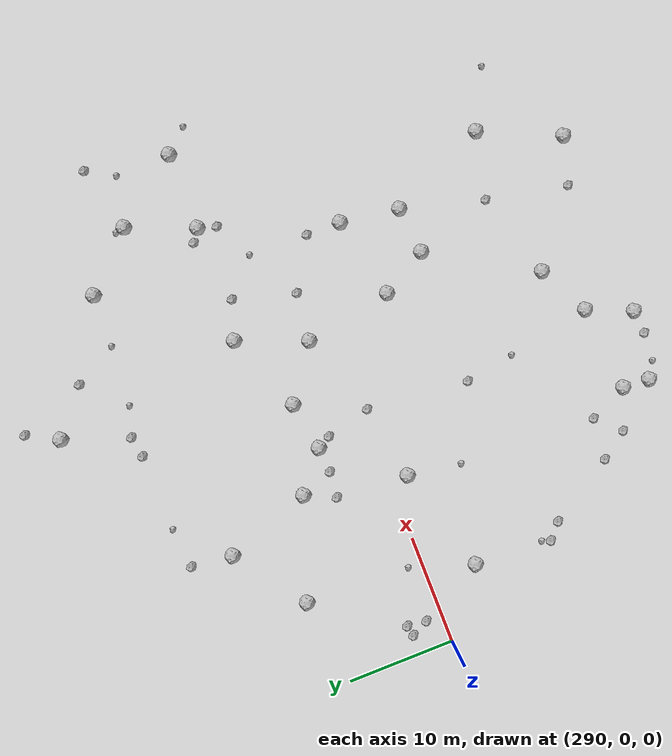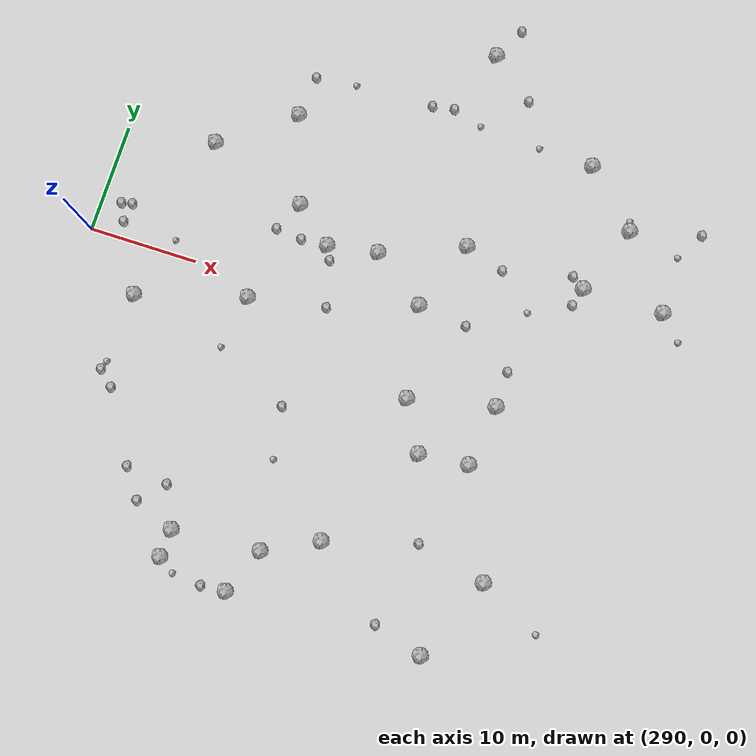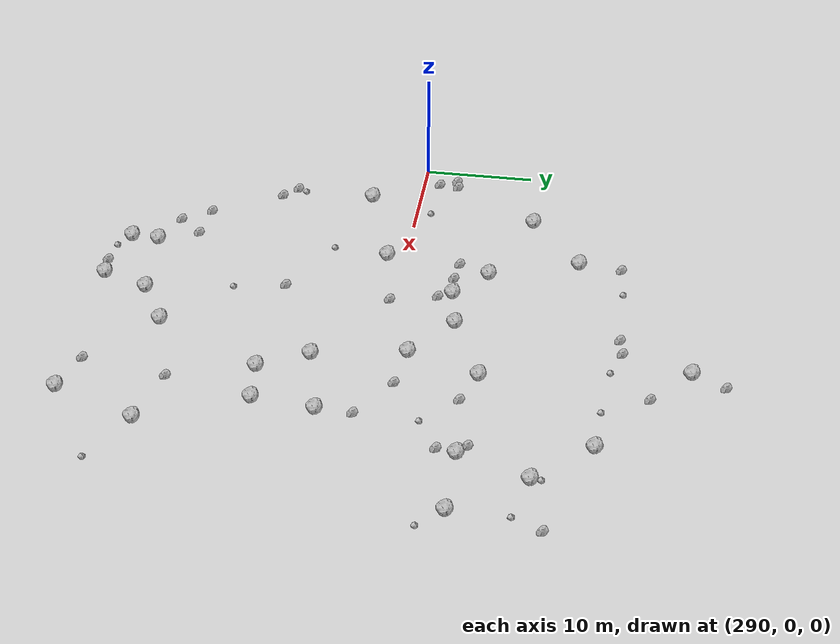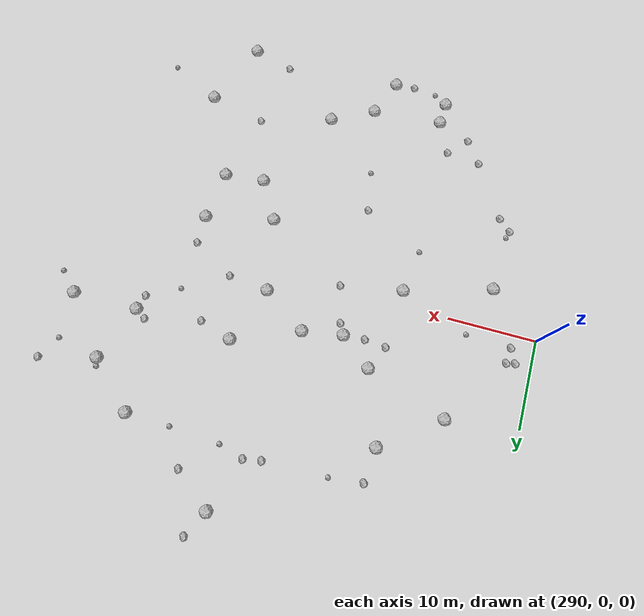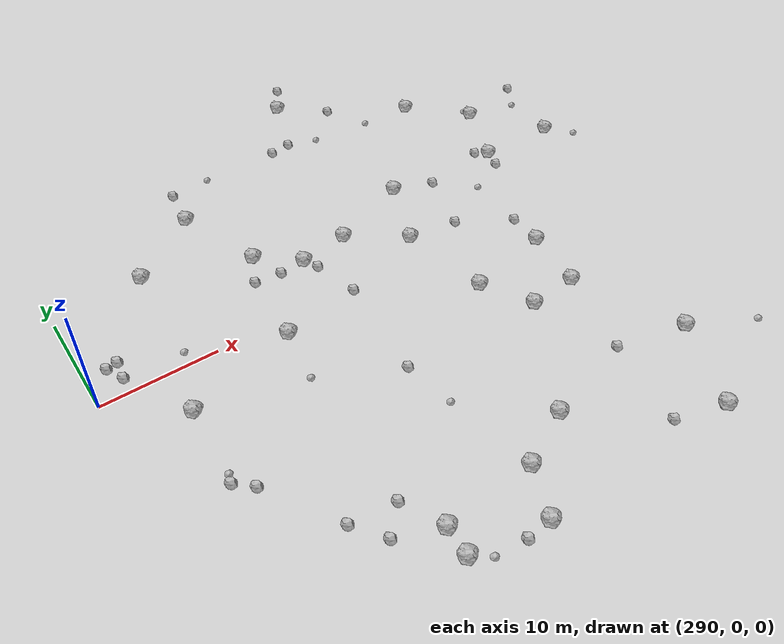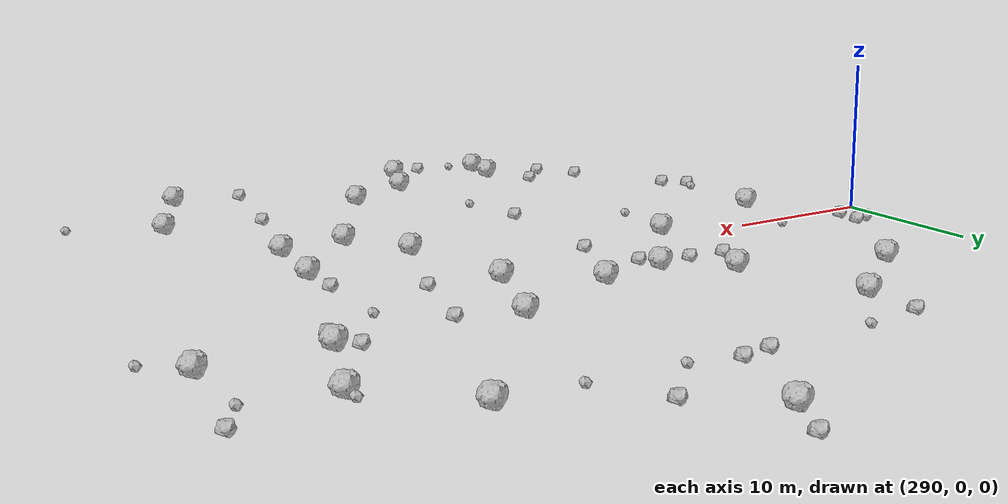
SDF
<sdf version="1.6">
 <world name="default">
  <include><uri>model://sun</uri></include>
  <model name="rock1_8_2">
   <include><uri>model://rock1</uri><pose>295.83820617359305 -4.564407767326323 0.5 0 0 0</pose></include>
  </model>
  <model name="rock1_8_3">
   <include><uri>model://rock1</uri><pose>324.39490705172443 -10.416921303331122 0.5 0 0 0</pose></include>
  </model>
  <model name="rock1_8_4">
   <include><uri>model://rock1</uri><pose>329.68238903334196 -4.377630623821062 0.5 0 0 0</pose></include>
  </model>
  <model name="rock1_8_5">
   <include><uri>model://rock1</uri><pose>312.1294778149277 -26.7421540747382 0.5 0 0 0</pose></include>
  </model>
  <model name="rock1_8_6">
   <include><uri>model://rock1</uri><pose>315.4805052163136 5.747548327111964 0.5 0 0 0</pose></include>
  </model>
  <model name="rock1_8_7">
   <include><uri>model://rock1</uri><pose>304.59714915130814 15.853167344520102 0.5 0 0 0</pose></include>
  </model>
  <model name="rock1_8_8">
   <include><uri>model://rock1</uri><pose>305.61459225810125 -1.7174346048007507 0.5 0 0 0</pose></include>
  </model>
  <model name="rock1_8_9">
   <include><uri>model://rock1</uri><pose>313.87818034800557 -22.578038622909315 0.5 0 0 0</pose></include>
  </model>
  <model name="rock1_8_10">
   <include><uri>model://rock1</uri><pose>333.094613638797 -19.30469721071903 0.5 0 0 0</pose></include>
  </model>
  <model name="rock1_8_11">
   <include><uri>model://rock1</uri><pose>331.60279806129705 19.358018119558224 0.5 0 0 0</pose></include>
  </model>
  <model name="rock1_8_12">
   <include><uri>model://rock1</uri><pose>334.01461216155116 8.155739815938077 0.5 0 0 0</pose></include>
  </model>
  <model name="rock1_8_13">
   <include><uri>model://rock1</uri><pose>318.645854791317 -20.17979684266734 0.5 0 0 0</pose></include>
  </model>
  <model name="rock1_8_14">
   <include><uri>model://rock1</uri><pose>307.37971996664436 7.856268859299476 0.5 0 0 0</pose></include>
  </model>
  <model name="rock1_8_15">
   <include><uri>model://rock1</uri><pose>305.7704571246803 -25.685902948143365 0.5 0 0 0</pose></include>
  </model>
  <model name="rock1_8_16">
   <include><uri>model://rock1</uri><pose>329.75302305609097 -26.769563046982135 0.5 0 0 0</pose></include>
  </model>
  <model name="rock1_8_17">
   <include><uri>model://rock1</uri><pose>310.90692070354544 4.975806681444496 0.5 0 0 0</pose></include>
  </model>
  <model name="rock1_8_18">
   <include><uri>model://rock1</uri><pose>341.41687821167176 8.184389022793567 0.5 0 0 0</pose></include>
  </model>
  <model name="rock1_8_19">
   <include><uri>model://rock1</uri><pose>320.44329121095745 2.2477638979776984 0.5 0 0 0</pose></include>
  </model>
  <model name="rock1_8_20">
   <include><uri>model://rock1</uri><pose>322.95551216706934 8.722516978683977 0.5 0 0 0</pose></include>
  </model>
  <model name="rock1_8_21">
   <include><uri>model://rock1</uri><pose>320.2096885790651 26.82979927743579 0.5 0 0 0</pose></include>
  </model>
  <model name="rock1_8_22">
   <include><uri>model://rock1</uri><pose>321.94788515519537 -6.057297946267884 0.5 0 0 0</pose></include>
  </model>
  <model name="rock1_8_23">
   <include><uri>model://rock1</uri><pose>298.1774615017857 11.040037433456384 0.5 0 0 0</pose></include>
  </model>
  <model name="rock1_8_24">
   <include><uri>model://rock1</uri><pose>305.93772817492334 -23.185771149373203 0.5 0 0 0</pose></include>
  </model>
  <model name="rock1_8_25">
   <include><uri>model://rock1</uri><pose>328.8912122424359 -9.987004905333624 0.5 0 0 0</pose></include>
  </model>
  <model name="rock1_8_26">
   <include><uri>model://rock1</uri><pose>336.528394778911 14.508143871506903 0.5 0 0 0</pose></include>
  </model>
  <model name="rock2_8_0">
   <include><uri>model://rock2</uri><pose>318.0097273787121 20.74810711608368 0.3 0 0 0</pose></include>
  </model>
  <model name="rock2_8_1">
   <include><uri>model://rock2</uri><pose>306.03350337138465 5.0772485854842415 0.3 0 0 0</pose></include>
  </model>
  <model name="rock2_8_2">
   <include><uri>model://rock2</uri><pose>325.2633050749803 -25.509126235633715 0.3 0 0 0</pose></include>
  </model>
  <model name="rock2_8_3">
   <include><uri>model://rock2</uri><pose>326.6100863876487 7.553352239554968 0.3 0 0 0</pose></include>
  </model>
  <model name="rock2_8_4">
   <include><uri>model://rock2</uri><pose>300.3701024073665 -19.195826074714425 0.3 0 0 0</pose></include>
  </model>
  <model name="rock2_8_5">
   <include><uri>model://rock2</uri><pose>326.77106264542283 -17.82351630685206 0.3 0 0 0</pose></include>
  </model>
  <model name="rock2_8_6">
   <include><uri>model://rock2</uri><pose>295.2654994680582 -11.792583492709383 0.3 0 0 0</pose></include>
  </model>
  <model name="rock2_8_7">
   <include><uri>model://rock2</uri><pose>342.8631071200131 16.146345647531533 0.3 0 0 0</pose></include>
  </model>
  <model name="rock2_8_8">
   <include><uri>model://rock2</uri><pose>312.58352591735326 -0.45228719297771036 0.3 0 0 0</pose></include>
  </model>
  <model name="rock2_8_9">
   <include><uri>model://rock2</uri><pose>333.49831635486066 6.434228278525154 0.3 0 0 0</pose></include>
  </model>
  <model name="rock2_8_10">
   <include><uri>model://rock2</uri><pose>329.7340618218803 -1.0977155896418793 0.3 0 0 0</pose></include>
  </model>
  <model name="rock2_8_11">
   <include><uri>model://rock2</uri><pose>296.6466032420322 -13.060819435050774 0.3 0 0 0</pose></include>
  </model>
  <model name="rock2_8_12">
   <include><uri>model://rock2</uri><pose>324.3126261833923 23.521652349530292 0.3 0 0 0</pose></include>
  </model>
  <model name="rock2_8_13">
   <include><uri>model://rock2</uri><pose>309.87891286972814 -26.95253196797126 0.3 0 0 0</pose></include>
  </model>
  <model name="rock2_8_14">
   <include><uri>model://rock2</uri><pose>304.97232625539687 19.777950131609806 0.3 0 0 0</pose></include>
  </model>
  <model name="rock2_8_15">
   <include><uri>model://rock2</uri><pose>291.83861708377793 3.0996463563333876 0.3 0 0 0</pose></include>
  </model>
  <model name="rock2_8_16">
   <include><uri>model://rock2</uri><pose>292.61078942301043 1.517293623065786 0.3 0 0 0</pose></include>
  </model>
  <model name="rock2_8_17">
   <include><uri>model://rock2</uri><pose>302.18049446460884 -21.732513117343167 0.3 0 0 0</pose></include>
  </model>
  <model name="rock2_8_18">
   <include><uri>model://rock2</uri><pose>324.9879018135831 1.717353348224112 0.3 0 0 0</pose></include>
  </model>
  <model name="rock2_8_19">
   <include><uri>model://rock2</uri><pose>316.01056050026295 20.410100553205176 0.3 0 0 0</pose></include>
  </model>
  <model name="rock2_8_20">
   <include><uri>model://rock2</uri><pose>304.223332570076 -19.627318528205407 0.3 0 0 0</pose></include>
  </model>
  <model name="rock2_8_21">
   <include><uri>model://rock2</uri><pose>292.81758866982716 3.3057727898867455 0.3 0 0 0</pose></include>
  </model>
  <model name="rock2_8_22">
   <include><uri>model://rock2</uri><pose>308.4571616629411 4.835059195982666 0.3 0 0 0</pose></include>
  </model>
  <model name="rock2_8_23">
   <include><uri>model://rock2</uri><pose>321.74455302698595 29.84368882358158 0.3 0 0 0</pose></include>
  </model>
  <model name="rock2_8_24">
   <include><uri>model://rock2</uri><pose>332.8367106994166 8.987363835221892 0.3 0 0 0</pose></include>
  </model>
  <model name="rock2_8_25">
   <include><uri>model://rock2</uri><pose>311.5147779083587 3.7436816200896033 0.3 0 0 0</pose></include>
  </model>
  <model name="rock2_8_26">
   <include><uri>model://rock2</uri><pose>311.63183584227835 -10.079662371219737 0.3 0 0 0</pose></include>
  </model>
  <model name="rock3_8_0">
   <include><uri>model://rock3</uri><pose>295.4976263777977 -11.02261682609949 0.2 0 0 0</pose></include>
  </model>
  <model name="rock3_8_1">
   <include><uri>model://rock3</uri><pose>341.31897701990266 13.480105067972652 0.2 0 0 0</pose></include>
  </model>
  <model name="rock3_8_2">
   <include><uri>model://rock3</uri><pose>304.75444040329603 -6.727040857938903 0.2 0 0 0</pose></include>
  </model>
  <model name="rock3_8_3">
   <include><uri>model://rock3</uri><pose>312.3867402554951 -14.770678389667546 0.2 0 0 0</pose></include>
  </model>
  <model name="rock3_8_4">
   <include><uri>model://rock3</uri><pose>326.54007371964525 19.509123460424654 0.2 0 0 0</pose></include>
  </model>
  <model name="rock3_8_5">
   <include><uri>model://rock3</uri><pose>320.8015186663529 19.881076240155714 0.2 0 0 0</pose></include>
  </model>
  <model name="rock3_8_6">
   <include><uri>model://rock3</uri><pose>307.19880323306023 -26.746445202593716 0.2 0 0 0</pose></include>
  </model>
  <model name="rock3_8_7">
   <include><uri>model://rock3</uri><pose>338.6525700173505 -22.174763779603026 0.2 0 0 0</pose></include>
  </model>
  <model name="rock3_8_8">
   <include><uri>model://rock3</uri><pose>343.4235681780779 6.025996862618136 0.2 0 0 0</pose></include>
  </model>
  <model name="rock3_8_9">
   <include><uri>model://rock3</uri><pose>308.7310231605684 20.167869308391687 0.2 0 0 0</pose></include>
  </model>
  <model name="rock3_8_10">
   <include><uri>model://rock3</uri><pose>329.87560517251785 4.53221649431709 0.2 0 0 0</pose></include>
  </model>
  <model name="rock3_8_11">
   <include><uri>model://rock3</uri><pose>297.67502699415564 1.273640809296186 0.2 0 0 0</pose></include>
  </model>
  <model name="rock3_8_12">
   <include><uri>model://rock3</uri><pose>336.3076020067251 15.402929294096474 0.2 0 0 0</pose></include>
  </model>
 </world>
</sdf>
